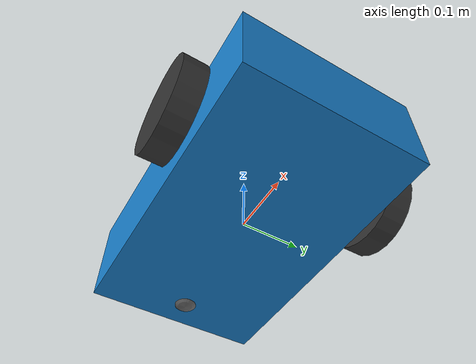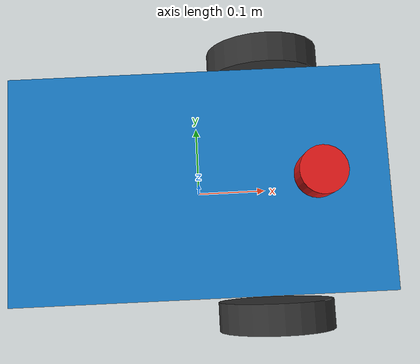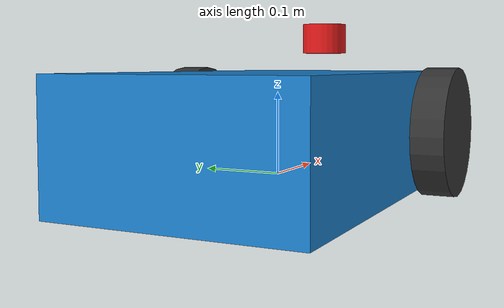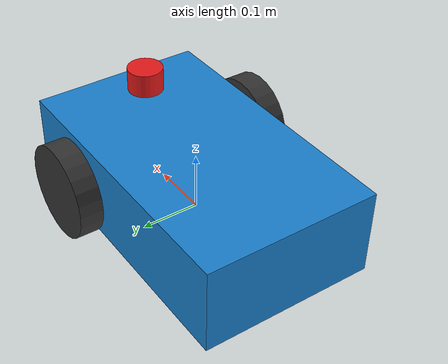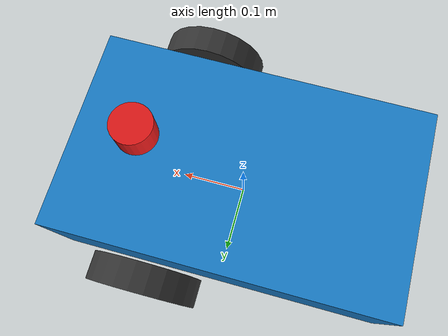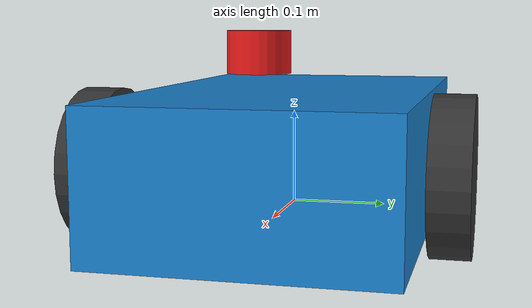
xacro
<?xml version="1.0"?>
<robot xmlns:xacro="http://www.ros.org/wiki/xacro" name="agy_rover">

  <!-- Kinematic Base Footprint -->
  <link name="base_footprint"/>

  <joint name="base_footprint_joint" type="fixed">
    <parent link="base_footprint"/>
    <child link="base_link"/>
    <origin xyz="0 0 0.05" rpy="0 0 0"/>
  </joint>

  <!-- Link: base_link -->
  <link name="base_link">
    <visual>
      <origin xyz="0 0 0" rpy="0 0 0"/>
      <geometry>
        <box size="0.5 0.3 0.15"/>
      </geometry>
      <material name="mat_base_link">
        <color rgba="0.1 0.5 0.8 1.0"/>
      </material>
    </visual>
    <collision>
      <origin xyz="0 0 0" rpy="0 0 0"/>
      <geometry>
        <box size="0.5 0.3 0.15"/>
      </geometry>
    </collision>
    <inertial>
      <mass value="5.0"/>
      <inertia ixx="0.046875" ixy="0.0" ixz="0.0"
               iyy="0.113542" iyz="0.0"
               izz="0.141667"/>
    </inertial>
  </link>
  <!-- Link: left_wheel -->
  <link name="left_wheel">
    <visual>
      <origin xyz="0 0 0" rpy="0 0 0"/>
      <geometry>
        <cylinder radius="0.08" length="0.04"/>
      </geometry>
      <material name="mat_left_wheel">
        <color rgba="0.2 0.2 0.2 1.0"/>
      </material>
    </visual>
    <collision>
      <origin xyz="0 0 0" rpy="0 0 0"/>
      <geometry>
        <cylinder radius="0.08" length="0.04"/>
      </geometry>
    </collision>
    <inertial>
      <mass value="0.5"/>
      <inertia ixx="0.000867" ixy="0.0" ixz="0.0"
               iyy="0.000867" iyz="0.0"
               izz="0.0016"/>
    </inertial>
  </link>
  <!-- Link: right_wheel -->
  <link name="right_wheel">
    <visual>
      <origin xyz="0 0 0" rpy="0 0 0"/>
      <geometry>
        <cylinder radius="0.08" length="0.04"/>
      </geometry>
      <material name="mat_right_wheel">
        <color rgba="0.2 0.2 0.2 1.0"/>
      </material>
    </visual>
    <collision>
      <origin xyz="0 0 0" rpy="0 0 0"/>
      <geometry>
        <cylinder radius="0.08" length="0.04"/>
      </geometry>
    </collision>
    <inertial>
      <mass value="0.5"/>
      <inertia ixx="0.000867" ixy="0.0" ixz="0.0"
               iyy="0.000867" iyz="0.0"
               izz="0.0016"/>
    </inertial>
  </link>
  <!-- Link: caster_wheel -->
  <link name="caster_wheel">
    <visual>
      <origin xyz="0 0 0" rpy="0 0 0"/>
      <geometry>
        <sphere radius="0.04"/>
      </geometry>
      <material name="mat_caster_wheel">
        <color rgba="0.4 0.4 0.4 1.0"/>
      </material>
    </visual>
    <collision>
      <origin xyz="0 0 0" rpy="0 0 0"/>
      <geometry>
        <sphere radius="0.04"/>
      </geometry>
    </collision>
    <inertial>
      <mass value="0.2"/>
      <inertia ixx="0.000128" ixy="0.0" ixz="0.0"
               iyy="0.000128" iyz="0.0"
               izz="0.000128"/>
    </inertial>
  </link>
  <!-- Link: laser_frame -->
  <link name="laser_frame">
    <visual>
      <origin xyz="0 0 0" rpy="0 0 0"/>
      <geometry>
        <cylinder radius="0.03" length="0.04"/>
      </geometry>
      <material name="mat_laser_frame">
        <color rgba="0.9 0.1 0.1 1.0"/>
      </material>
    </visual>
    <collision>
      <origin xyz="0 0 0" rpy="0 0 0"/>
      <geometry>
        <cylinder radius="0.03" length="0.04"/>
      </geometry>
    </collision>
    <inertial>
      <mass value="0.1"/>
      <inertia ixx="3.6e-05" ixy="0.0" ixz="0.0"
               iyy="3.6e-05" iyz="0.0"
               izz="4.5e-05"/>
    </inertial>
  </link>
  <!-- Link: imu_link -->
  <link name="imu_link">
    <visual>
      <origin xyz="0 0 0" rpy="0 0 0"/>
      <geometry>
        <box size="0.02 0.02 0.01"/>
      </geometry>
      <material name="mat_imu_link">
        <color rgba="0.1 0.8 0.1 1.0"/>
      </material>
    </visual>
    <collision>
      <origin xyz="0 0 0" rpy="0 0 0"/>
      <geometry>
        <box size="0.02 0.02 0.01"/>
      </geometry>
    </collision>
    <inertial>
      <mass value="0.05"/>
      <inertia ixx="1e-05" ixy="0.0" ixz="0.0"
               iyy="1e-05" iyz="0.0"
               izz="1e-05"/>
    </inertial>
  </link>

  <!-- Joint: left_wheel_joint (continuous) -->
  <joint name="left_wheel_joint" type="continuous">
    <parent link="base_link"/>
    <child link="left_wheel"/>
    <origin xyz="0.1 0.18 0.0"
            rpy="-1.5708 0.0 0.0"/>
    <axis xyz="0 0 1"/>
  </joint>
  <!-- Joint: right_wheel_joint (continuous) -->
  <joint name="right_wheel_joint" type="continuous">
    <parent link="base_link"/>
    <child link="right_wheel"/>
    <origin xyz="0.1 -0.18 0.0"
            rpy="-1.5708 0.0 0.0"/>
    <axis xyz="0 0 1"/>
  </joint>
  <!-- Joint: caster_wheel_joint (fixed) -->
  <joint name="caster_wheel_joint" type="fixed">
    <parent link="base_link"/>
    <child link="caster_wheel"/>
    <origin xyz="-0.2 0.0 -0.04"
            rpy="0.0 0.0 0.0"/>
  </joint>
  <!-- Joint: laser_joint (fixed) -->
  <joint name="laser_joint" type="fixed">
    <parent link="base_link"/>
    <child link="laser_frame"/>
    <origin xyz="0.15 0.0 0.12"
            rpy="0.0 0.0 0.0"/>
  </joint>
  <!-- Joint: imu_joint (fixed) -->
  <joint name="imu_joint" type="fixed">
    <parent link="base_link"/>
    <child link="imu_link"/>
    <origin xyz="0.0 0.0 0.05"
            rpy="0.0 0.0 0.0"/>
  </joint>

  <!-- Gazebo Sim Differential Drive Plugin -->
  <gazebo>
    <plugin filename="gz-sim-diff-drive-system" name="gz::sim::systems::DiffDrive">
      <left_joint>left_wheel_joint</left_joint>
      <right_joint>right_wheel_joint</right_joint>
      <wheel_separation>0.30</wheel_separation>
      <wheel_radius>0.05</wheel_radius>
      <topic>/cmd_vel</topic>
      <odom_topic>/odom</odom_topic>
      <frame_id>odom</frame_id>
      <child_frame_id>base_footprint</child_frame_id>
    </plugin>
    <plugin filename="gz-sim-sensors-system" name="gz::sim::systems::Sensors">
      <render_engine>ogre2</render_engine>
    </plugin>
  </gazebo>

</robot>
